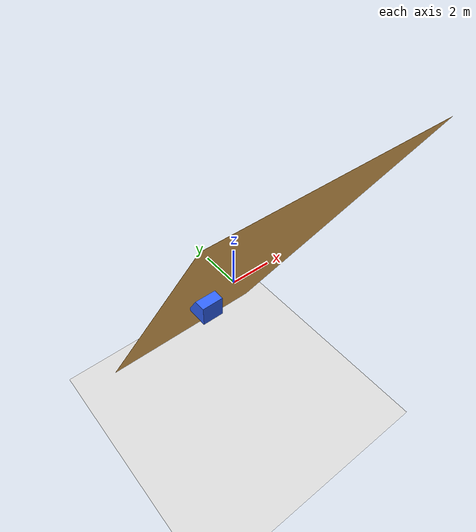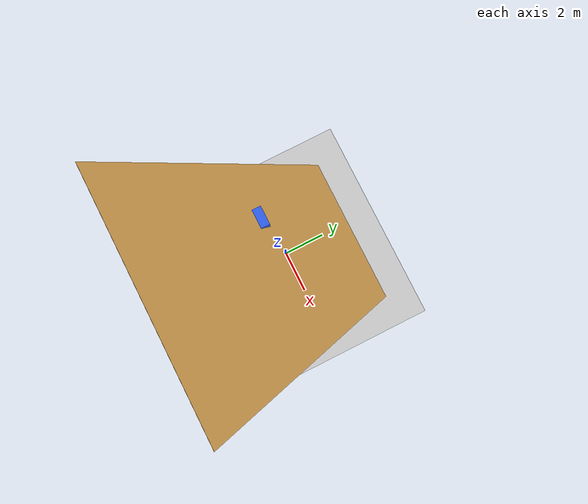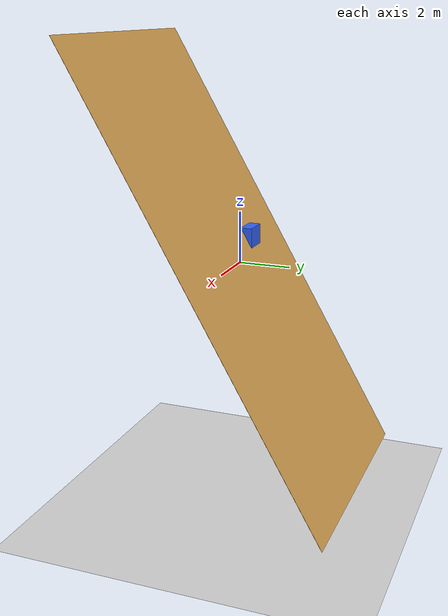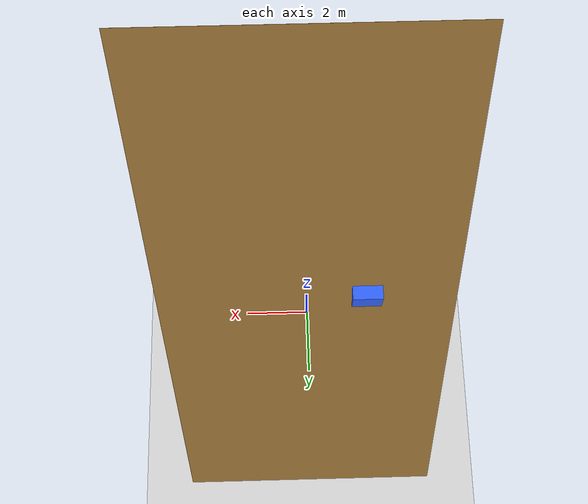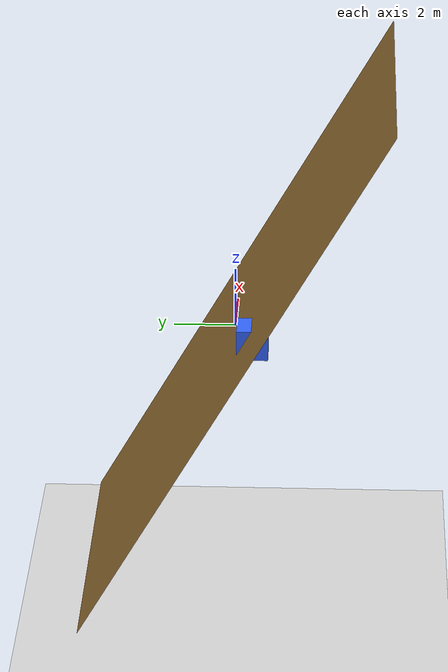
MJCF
<mujoco>
  <option gravity="0 0 -9.81" />
  <worldbody>
    <light diffuse="0.6 0.6 0.6" pos="0 0 5" dir="0 0 -1" />
    <body name="object_3" pos="0 0 -10">
      <geom type="plane" size="50 50 0.1" rgba="0.85 0.85 0.85 1" friction="1 1 1" />
    </body>
    <body name="object_2" pos="0 0 0">
      <geom type="plane" size="5 10 0.1" quat="0.5 0.86 0 0" rgba="0.8 0.6 0.3 1" friction="0.4 0.4 0.4" />
    </body>
    <body name="object_1" pos="-2 -0.6 0.5">
      <geom type="box" size="0.5 0.5 0.5" mass="2" rgba="0.2 0.4 1 1" />
      <joint type="free" name="object_1_joint" />
    </body>
  </worldbody>
</mujoco>
